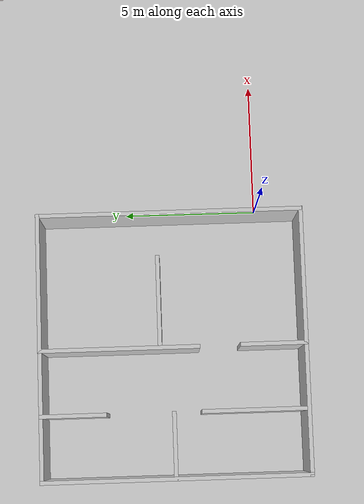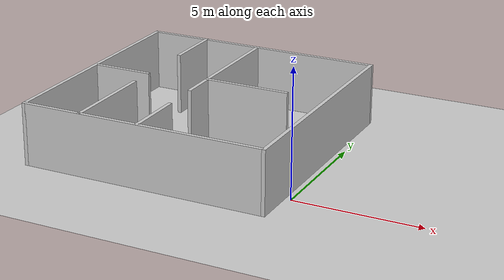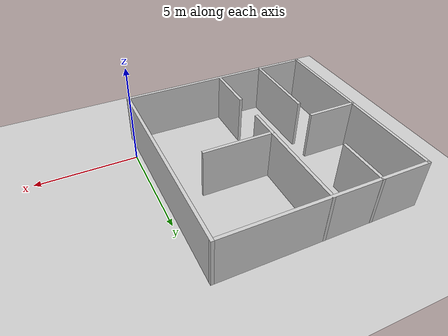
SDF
<sdf version='1.4'>
  <world name='default'>
    <!-- A global light source -->
    <include>
      <uri>model://sun</uri>
    </include>

    <!-- A ground plane -->
    <include>
      <uri>model://ground_plane</uri>
    </include>

    <physics type="ode">
      <real_time_update_rate>1000.0</real_time_update_rate>
      <max_step_size>0.001</max_step_size>
      <real_time_factor>1</real_time_factor>
      <ode>
        <solver>
          <type>quick</type>
          <iters>150</iters>
          <precon_iters>0</precon_iters>
          <sor>1.400000</sor>
          <use_dynamic_moi_rescaling>1</use_dynamic_moi_rescaling>
        </solver>
        <constraints>
          <cfm>0.00001</cfm>
          <erp>0.2</erp>
          <contact_max_correcting_vel>2000.000000</contact_max_correcting_vel>
          <contact_surface_layer>0.01000</contact_surface_layer>
        </constraints>
      </ode>
    </physics>

    <!-- The room model -->
    <include>
      <uri>model://room_with_walls_1</uri>
    </include>

    <scene>
      <ambient>0.4 0.4 0.4 1</ambient>
      <background>0.7 0.7 0.7 1</background>
      <shadows>true</shadows>
    </scene>

    <gui fullscreen='0'>
      <camera name='user_camera'>
        <pose>0.0 0.0 17.0 0 1.5708 0</pose>
        <view_controller>orbit</view_controller>
      </camera>
    </gui>
  </world>
</sdf>

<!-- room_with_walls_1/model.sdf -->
<sdf version='1.7'>
  <model name='room_with_walls_10x10'>
    <pose frame=''>-5.11916 3.33552 0 0 -0 0</pose>
    <link name='Wall_1'>
      <collision name='Wall_1_Collision'>
        <geometry>
          <box>
            <size>10 0.15 2.5</size>
          </box>
        </geometry>
        <pose frame=''>0 0 1.25 0 -0 0</pose>
      </collision>
      <visual name='Wall_1_Visual'>
        <pose frame=''>0 0 1.25 0 -0 0</pose>
        <geometry>
          <box>
            <size>10 0.15 2.5</size>
          </box>
        </geometry>
        <material>
          <ambient>0.8 0.8 0.8 1</ambient>
          <diffuse>0.8 0.8 0.8 1</diffuse>
          <specular>0.8 0.8 0.8 1</specular>
        </material>
        <meta>
          <layer>0</layer>
        </meta>
      </visual>
      <pose frame=''>-0.119159 -4.92736 0 0 -0 0</pose>
    </link>
    <link name='Wall_11'>
      <collision name='Wall_11_Collision'>
        <geometry>
          <box>
            <size>2.5 0.15 2.5</size>
          </box>
        </geometry>
        <pose frame=''>0 0 1.25 0 -0 0</pose>
      </collision>
      <visual name='Wall_11_Visual'>
        <pose frame=''>0 0 1.25 0 -0 0</pose>
        <geometry>
          <box>
            <size>2.5 0.15 2.5</size>
          </box>
        </geometry>
        <material>
          <ambient>0.8 0.8 0.8 1</ambient>
          <diffuse>0.8 0.8 0.8 1</diffuse>
          <specular>0.8 0.8 0.8 1</specular>
        </material>
        <meta>
          <layer>0</layer>
        </meta>
      </visual>
      <pose frame=''>-2.64666 3.75236 0 0 -0 -1.5708</pose>
    </link>
    <link name='Wall_16'>
      <collision name='Wall_16_Collision'>
        <geometry>
          <box>
            <size>2.5 0.15 2.5</size>
          </box>
        </geometry>
        <pose frame=''>0 0 1.25 0 -0 0</pose>
      </collision>
      <visual name='Wall_16_Visual'>
        <pose frame=''>0 0 1.25 0 -0 0</pose>
        <geometry>
          <box>
            <size>2.5 0.15 2.5</size>
          </box>
        </geometry>
        <material>
          <ambient>0.8 0.8 0.8 1</ambient>
          <diffuse>0.8 0.8 0.8 1</diffuse>
          <specular>0.8 0.8 0.8 1</specular>
        </material>
        <meta>
          <layer>0</layer>
        </meta>
      </visual>
      <pose frame=''>-3.84066 0.028362 0 0 -0 0</pose>
    </link>
    <link name='Wall_18'>
      <collision name='Wall_18_Collision'>
        <geometry>
          <box>
            <size>4 0.15 2.5</size>
          </box>
        </geometry>
        <pose frame=''>0 0 1.25 0 -0 0</pose>
      </collision>
      <visual name='Wall_18_Visual'>
        <pose frame=''>0 0 1.25 0 -0 0</pose>
        <geometry>
          <box>
            <size>4 0.15 2.5</size>
          </box>
        </geometry>
        <material>
          <ambient>0.8 0.8 0.8 1</ambient>
          <diffuse>0.8 0.8 0.8 1</diffuse>
          <specular>0.8 0.8 0.8 1</specular>
        </material>
        <meta>
          <layer>0</layer>
        </meta>
      </visual>
      <pose frame=''>-2.63516 -2.99164 0 0 -0 1.5708</pose>
    </link>
    <link name='Wall_2'>
      <collision name='Wall_2_Collision'>
        <geometry>
          <box>
            <size>10 0.15 2.5</size>
          </box>
        </geometry>
        <pose frame=''>0 0 1.25 0 -0 0</pose>
      </collision>
      <visual name='Wall_2_Visual'>
        <pose frame=''>0 0 1.25 0 -0 0</pose>
        <geometry>
          <box>
            <size>10 0.15 2.5</size>
          </box>
        </geometry>
        <material>
          <ambient>0.8 0.8 0.8 1</ambient>
          <diffuse>0.8 0.8 0.8 1</diffuse>
          <specular>0.8 0.8 0.8 1</specular>
        </material>
        <meta>
          <layer>0</layer>
        </meta>
      </visual>
      <pose frame=''>4.80584 -0.002362 0 0 -0 1.5708</pose>
    </link>
    <link name='Wall_24'>
      <collision name='Wall_24_Collision'>
        <geometry>
          <box>
            <size>6 0.15 2.5</size>
          </box>
        </geometry>
        <pose frame=''>0 0 1.25 0 -0 0</pose>
      </collision>
      <visual name='Wall_24_Visual'>
        <pose frame=''>0 0 1.25 0 -0 0</pose>
        <geometry>
          <box>
            <size>6 0.15 2.5</size>
          </box>
        </geometry>
        <material>
          <ambient>0.8 0.8 0.8 1</ambient>
          <diffuse>0.8 0.8 0.8 1</diffuse>
          <specular>0.8 0.8 0.8 1</specular>
        </material>
        <meta>
          <layer>0</layer>
        </meta>
      </visual>
      <pose frame=''>-0.243157 2.00236 0 0 -0 -1.5708</pose>
    </link>
    <link name='Wall_28'>
      <collision name='Wall_28_Collision'>
        <geometry>
          <box>
            <size>2.5 0.15 2.5</size>
          </box>
        </geometry>
        <pose frame=''>0 0 1.25 0 -0 0</pose>
      </collision>
      <visual name='Wall_28_Visual'>
        <pose frame=''>0 0 1.25 0 -0 0</pose>
        <geometry>
          <box>
            <size>2.5 0.15 2.5</size>
          </box>
        </geometry>
        <material>
          <ambient>0.8 0.8 0.8 1</ambient>
          <diffuse>0.8 0.8 0.8 1</diffuse>
          <specular>0.8 0.8 0.8 1</specular>
        </material>
        <meta>
          <layer>0</layer>
        </meta>
      </visual>
      <pose frame=''>-0.220157 -3.74164 0 0 -0 1.5708</pose>
    </link>
    <link name='Wall_3'>
      <collision name='Wall_3_Collision'>
        <geometry>
          <box>
            <size>10 0.15 2.5</size>
          </box>
        </geometry>
        <pose frame=''>0 0 1.25 0 -0 0</pose>
      </collision>
      <visual name='Wall_3_Visual'>
        <pose frame=''>0 0 1.25 0 -0 0</pose>
        <geometry>
          <box>
            <size>10 0.15 2.5</size>
          </box>
        </geometry>
        <material>
          <ambient>0.8 0.8 0.8 1</ambient>
          <diffuse>0.8 0.8 0.8 1</diffuse>
          <specular>0.8 0.8 0.8 1</specular>
        </material>
        <meta>
          <layer>0</layer>
        </meta>
      </visual>
      <pose frame=''>-0.119159 4.92264 0 0 -0 3.14159</pose>
    </link>
    <link name='Wall_36'>
      <collision name='Wall_36_Collision'>
        <geometry>
          <box>
            <size>3.5 0.15 2.5</size>
          </box>
        </geometry>
        <pose frame=''>0 0 1.25 0 -0 0</pose>
      </collision>
      <visual name='Wall_36_Visual'>
        <pose frame=''>0 0 1.25 0 -0 0</pose>
        <geometry>
          <box>
            <size>3.5 0.15 2.5</size>
          </box>
        </geometry>
        <material>
          <ambient>0.8 0.8 0.8 1</ambient>
          <diffuse>0.8 0.8 0.8 1</diffuse>
          <specular>0.8 0.8 0.8 1</specular>
        </material>
        <meta>
          <layer>0</layer>
        </meta>
      </visual>
      <pose frame=''>1.44334 0.476862 0 0 -0 0</pose>
    </link>
    <link name='Wall_4'>
      <collision name='Wall_4_Collision'>
        <geometry>
          <box>
            <size>10 0.15 2.5</size>
          </box>
        </geometry>
        <pose frame=''>0 0 1.25 0 -0 0</pose>
      </collision>
      <visual name='Wall_4_Visual'>
        <pose frame=''>0 0 1.25 0 -0 0</pose>
        <geometry>
          <box>
            <size>10 0.15 2.5</size>
          </box>
        </geometry>
        <material>
          <ambient>0.8 0.8 0.8 1</ambient>
          <diffuse>0.8 0.8 0.8 1</diffuse>
          <specular>0.8 0.8 0.8 1</specular>
        </material>
        <meta>
          <layer>0</layer>
        </meta>
      </visual>
      <pose frame=''>-5.04416 -0.002362 0 0 -0 -1.5708</pose>
    </link>
    <static>1</static>
  </model>
</sdf>
